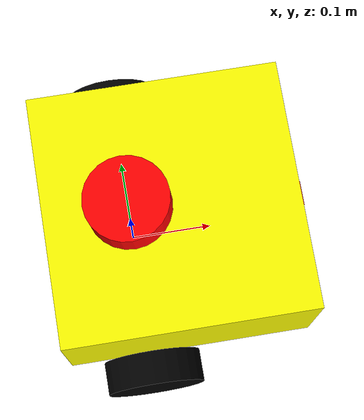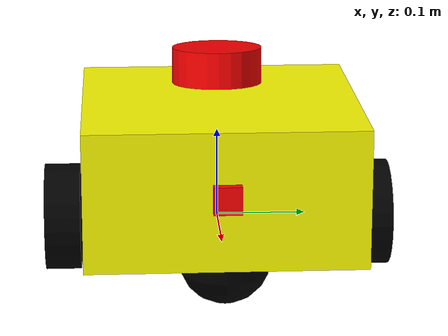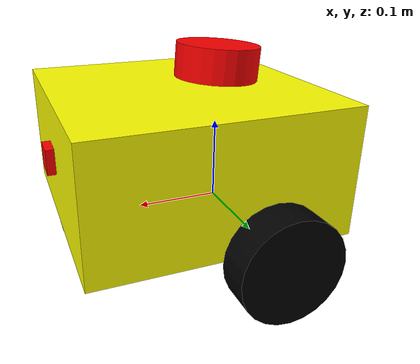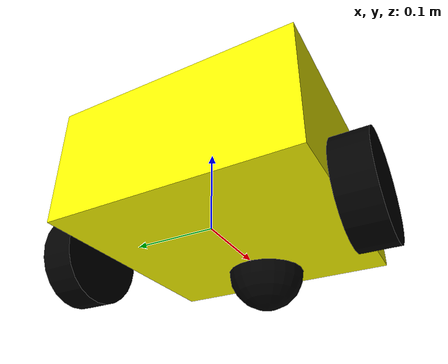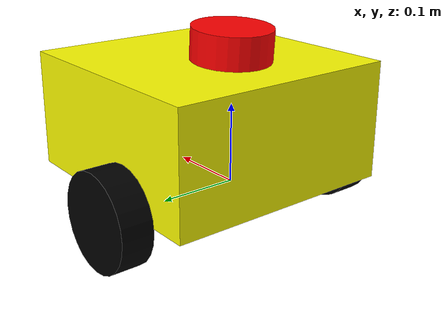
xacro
<?xml version="1.0"?>
<robot xmlns:xacro="http://www.ros.org/wiki/xacro"  name="robot">

    <xacro:include filename="robot_core.xacro"/>
    <xacro:include filename="g_control.xacro"/>
    <xacro:include filename="lidar.xacro"/>
    <xacro:include filename="camera.xacro"/>

</robot>

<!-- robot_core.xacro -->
<robot xmlns:xacro="http://www.ros.org/wiki/xacro">

    <!--Inertial macros file included-->
    <xacro:include filename="inertial_macros.xacro" />

    <!-- Defining the colors -->
    <material name="black">
        <color rgba="0 0 0 1"/>
    </material>

    <material name="white">
        <color rgba="1 1 1 1"/>
    </material>

    <material name="red">
        <color rgba="1 0 0 1"/>
    </material>

    <material name="green">
        <color rgba="0 1 0 1"/>
    </material>

    <material name="yellow">
        <color rgba="1 1 0 1"/>
    </material>

    <!--BASE_LINK-->
    <link name="base_link"> </link>

    <!--BASE_FOOTPRINT LINK-->
    <link name="base_footprint"> </link>
    <joint name="base_footprint_joint" type="fixed">
        <origin xyz="0 0 0" rpy="0 0 0"/>
        <parent link="base_link"/>
        <child link="base_footprint"/>
    </joint>

    <!--CHASSIS_LINK-->
    <joint name="chassis_joint" type="fixed">
        <origin xyz="-0.1 0 0" rpy="0 0 0"/>
        <parent link="base_link"/>
        <child link="chassis_link"/>
    </joint>

    <link name="chassis_link">
        <visual>
            <origin xyz="0.15 0 0.075"/>
            <geometry>
                <box size="0.3 0.3 0.15"/>
            </geometry>
            <material name="yellow"/>
        </visual>
        <collision>
            <origin xyz="0.15 0 0.075"/>
            <geometry>
                <box size="0.3 0.3 0.15"/>
            </geometry>
        </collision>
        <xacro:inertial_box mass="0.5" x="0.3" y="0.3" z="0.15">
            <origin xyz="0.15 0 0.075" rpy="0 0 0" />
        </xacro:inertial_box>
    </link>
    <gazebo reference="chassis_link">
        <material>Gazebo/Yellow</material>
    </gazebo>

    <!--LEFT WHEEL LINK-->
    <link name="left_wheel">
        <visual>
            <origin xyz="0 0.0 0" rpy="${pi/2} 0 0"/>
            <geometry>
                <cylinder radius="0.06" length="0.04"/>
            </geometry>
            <material name="black"/>
        </visual>
        <collision>
            <origin xyz="0 0.0 0" rpy="${pi/2} 0 0"/>
            <geometry>
                <cylinder radius="0.06" length="0.04"/>
            </geometry>
        </collision>
        <xacro:inertial_cylinder mass="0.1" length="0.04" radius="0.06">
            <origin xyz="0 0 0" rpy="0 0 0" />
        </xacro:inertial_cylinder>
    </link>
    <gazebo reference="left_wheel">
        <material>Gazebo/Black</material>
    </gazebo>

    <joint name="left_wheel_joint" type="continuous">
        <origin xyz="0 0.175 0" rpy="0 0 0"/>
        <parent link="base_link"/>
        <child link="left_wheel"/>
        <axis xyz="0 1 0"/>
    </joint>

    <!--RIGHT WHEEL LINK-->

    <link name="right_wheel">
        <visual>
            <origin xyz="0 0.0 0" rpy="${pi/2} 0 0"/>
            <geometry>
                <cylinder radius="0.06" length="0.04"/>
            </geometry>
            <material name="black"/>
        </visual>
        <collision>
            <origin xyz="0 0.0 0" rpy="${pi/2} 0 0"/>
            <geometry>
                <cylinder radius="0.06" length="0.04"/>
            </geometry>
        </collision>
        <xacro:inertial_cylinder mass="0.1" length="0.04" radius="0.06">
            <origin xyz="0 0.0 0" rpy="0 0 0" />
        </xacro:inertial_cylinder>
    </link>
    <gazebo reference="right_wheel">
        <material>Gazebo/Black</material>
    </gazebo>

    <joint name="right_wheel_joint" type="continuous">
        <origin xyz="0 -0.175 0" rpy="0 0 0"/>
        <parent link="base_link"/>
        <child link="right_wheel"/>
        <axis xyz="0 1 0"/>
    </joint>

    <!--CASTER WHEEL LINK-->
    <link name="caster_wheel">
        <visual>
            <origin xyz="0 0 0" rpy="0 0 0"/>
            <geometry>
                <sphere radius="0.05"/>
            </geometry>
            <material name="black"/>
        </visual>
        <collision>
            <origin xyz="0 0 0" rpy="0 0 0"/>
            <geometry>
                <sphere radius="0.05"/>
            </geometry>
        </collision>
        <xacro:inertial_sphere mass="0.1" radius="0.05">
            <origin xyz="0 0 0" rpy="0 0 0" />
        </xacro:inertial_sphere>
    </link>
    <gazebo reference="caster_wheel">
        <material>Gazebo/Black</material>
        <mu1 value="0.001"/>
        <mu2 value="0.001"/>
    </gazebo>
    <joint name="caster_wheel_joint" type="fixed">
        <origin xyz="0.15 0 0" rpy="0 0 0"/>
        <parent link="base_link"/>
        <child link="caster_wheel"/>

    </joint>

</robot>

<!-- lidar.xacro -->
<robot xmlns:xacro="http://www.ros.org/wiki/xacro">

    <joint name="laser_joint" type="fixed">
        <parent link="chassis_link"/>
        <child link="laser_frame"/>
        <origin xyz="0.1 0 0.175" rpy="0 -0.07 0"/>
    </joint>

    <link name="laser_frame">
        <visual>
            <geometry>
                <cylinder radius="0.05" length="0.04"/>
            </geometry>
            <material name="red"/>
        </visual>
        <collision>
            <geometry>
                <cylinder radius="0.05" length="0.04"/>
            </geometry>
        </collision>
        <xacro:inertial_cylinder mass="0.1" length="0.04" radius="0.05">
            <origin xyz="0 0 0" rpy="0 0 0"/>
        </xacro:inertial_cylinder>
    </link>

    <!-- Gazebo plugin for the laser sensor -->

    <gazebo reference="laser_frame">
        <material>Gazebo/Red</material>

        <sensor name="laser" type="ray">
            <pose> 0 0 0 0 0 0 </pose>
            <visualize>false</visualize>
            <update_rate>10</update_rate>
            <ray>
                <scan>
                    <horizontal>
                        <samples>720</samples>
                        <resolution>1</resolution>
                        <min_angle>-3.141592</min_angle>
                        <max_angle>3.141592</max_angle>
                    </horizontal>
                </scan>
                <range>
                    <min>0.3</min>
                    <max>12</max>
                    <resolution>1</resolution>
                </range>
            </ray>

            <plugin name="laser_controller" filename="libgazebo_ros_ray_sensor.so">
                <ros>
                    <argument>~/out:=scan</argument>
                </ros>
                <output_type>sensor_msgs/LaserScan</output_type>
                <frame_name>laser_frame</frame_name>
            </plugin>
        </sensor>
    </gazebo>

</robot>

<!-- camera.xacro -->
<robot xmlns:xacro="http://www.ros.org/wiki/xacro">

    <joint name="camera_joint" type="fixed">
        <parent link="chassis_link"/>
        <child link="camera_link"/>
        <origin xyz="0.305 0 0.08" rpy="0 0 0"/>
    </joint>

    <link name="camera_link">
        <visual>
            <geometry>
                <box size="0.010 0.03 0.03"/>
            </geometry>
            <material name="red"/>
        </visual>
    </link>

    <!-- conversion from ros to standard-->
    <joint name="camera_optical_joint" type="fixed">
        <parent link="chassis_link"/>
        <child link="camera_link_optical"/>
        <origin xyz="0 0 0" rpy="${-pi/2} 0 ${-pi/2}"/>
    </joint>

    <link name="camera_link_optical"></link>

    <!-- Gazebo plugin for the laser sensor -->

    <gazebo reference="camera_link">
        <material>Gazebo/Red</material>

        <sensor name="camera" type="camera">
            <pose> 0 0 0 0 0 0 </pose>
            <visualize>true</visualize>
            <update_rate>10</update_rate>

            <camera>
                <horizontal_fov>1.3962634</horizontal_fov>
                <image>
                <width>640</width>
                <height>480</height>
                <format>R8G8B8</format>
                </image>
                <clip>
                <near>0.05</near>
                <far>100</far>
                </clip>
            </camera>

            <plugin name="camera_controller" filename="libgazebo_ros_camera.so">
                <frame_name>camera_link_optical</frame_name>
            </plugin>
        </sensor>
    </gazebo>

</robot>
